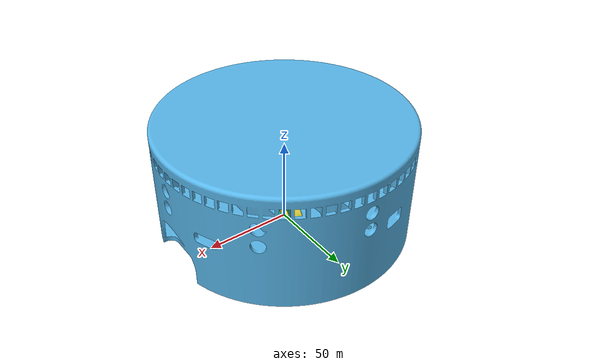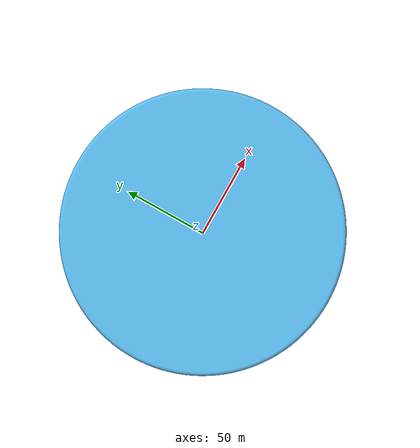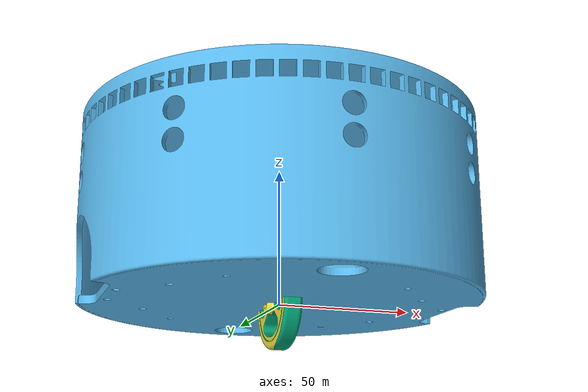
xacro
<?xml version="1.0"?>

<robot name="layka" xmlns:xacro="http://ros.org/wiki/xacro">

  <!-- Include Gazebo Parameters -->
  <xacro:include filename="$(find layka_description)/urdf/layka_odev_gazebo.xacro" />

  <!-- Include ros2_control Plugins -->
  <xacro:include filename="$(find layka_description)/urdf/layka_odev_control.xacro" />

  <link name="base_footprint"/>

  <link name="base_link">
    <visual>
      <origin xyz="0 0 -0.03285" rpy="0 0 0"/>
      <geometry>
          <mesh filename="$(find layka_description)/meshes/base_link.dae" />
      </geometry>
    </visual>

    <collision>
      <geometry>
          <cylinder length="0.0657" radius="0.0725"/>
      </geometry>
      <contact_coefficients mu="0" kp="1000.0" kd="1.0"/>
    </collision>

    <inertial>
      <origin xyz="0 0 0.016"/>
      <mass value="1.5" />
      <inertia ixx="0.01" ixy="0.0" ixz="0"
            iyy="0.01" iyz="0" izz="0.01" />
    </inertial>
  </link>

  <joint name="base_joint" type="fixed">
    <origin xyz="0 0 0.04245" rpy="0 0 0"/>
    <parent link="base_footprint"/>
    <child link="base_link"/>
  </joint>

   <link name="wheel_right_link">
    <visual>
      <origin xyz="0.016 0 0" rpy="0 -1.5708 0"/>
      <geometry>
          <mesh filename="$(find layka_description)/meshes/wheel_link.dae" />
      </geometry>
    </visual>

    <collision>
      <geometry>
          <cylinder radius="0.016" length="0.007"/>
      </geometry>
      <contact_coefficients mu="0" kp="1000.0" kd="1.0"/>
    </collision>

    <inertial>
      <mass value="1.0" />
      <inertia ixx="0.01" ixy="0.0" ixz="0"
            iyy="0.01" iyz="0" izz="0.01" />
    </inertial>
  </link>

  <joint name="wheel_right_joint" type="continuous">
    <origin xyz="0.0 -0.06925 -0.02645" rpy="1.57 0.0 0.0"/>
    <parent link="base_link"/>
    <child link="wheel_right_link"/>
    <axis xyz="0.0 0.0 1.0"/>
  </joint>

  <link name="wheel_left_link">
    <visual>
      <origin xyz="-0.016 0 0" rpy="0 1.5708 0"/>
      <geometry>
          <mesh filename="$(find layka_description)/meshes/wheel_link.dae" />
      </geometry>
    </visual>

    <collision>
      <geometry>
          <cylinder radius="0.016" length="0.007"/>
      </geometry>
      <contact_coefficients mu="0" kp="1000.0" kd="1.0"/>
    </collision>

    <inertial>
      <mass value="1.0" />
      <inertia ixx="0.01" ixy="0.0" ixz="0"
            iyy="0.01" iyz="0" izz="0.01" />
    </inertial>
  </link>

  <joint name="wheel_left_joint" type="continuous">
    <origin xyz="0.0 0.06925 -0.02645" rpy="1.57 0.0 0.0"/>
    <parent link="base_link"/>
    <child link="wheel_left_link"/>
    <axis xyz="0.0 0.0 1.0"/>
  </joint>

  <link name="caster_front_link">
    <visual>
      <geometry>
        <sphere radius="0.00635" />
      </geometry>
      <material name="layka_white" />
    </visual>

    <collision>
      <origin/>
      <geometry>
        <sphere radius="0.00635" />
      </geometry>
      <contact_coefficients mu="0" kp="1000.0" kd="1.0"/>
    </collision>

    <inertial>
      <mass value="1.0" />
      <inertia ixx="0.01" ixy="0.0" ixz="0"
            iyy="0.01" iyz="0" izz="0.01" />
    </inertial>
  </link>

  <joint name="caster_front_joint" type="continuous">
    <origin xyz="0.06 0.0 -0.0361" rpy="0.0 0.0 0.0"/>
    <axis xyz="0 0 1" />
    <parent link="base_link"/>
    <child link="caster_front_link"/>
  </joint>

  <link name="caster_back_link">
    <visual>
      <geometry>
        <sphere radius="0.00635" />
      </geometry>
      <material name="layka_white" />
    </visual>

    <collision>
      <origin/>
      <geometry>
        <sphere radius="0.00635" />
      </geometry>
      <contact_coefficients mu="0" kp="1000.0" kd="1.0"/>
    </collision>

    <inertial>
      <mass value="1.0" />
      <inertia ixx="0.01" ixy="0.0" ixz="0"
            iyy="0.01" iyz="0" izz="0.01" />
    </inertial>
  </link>

  <joint name="caster_back_joint" type="continuous">
    <origin xyz="-0.06 0.0 -0.0361" rpy="0.0 0.0 0.0"/>
    <axis xyz="0 0 1" />
    <parent link="base_link"/>
    <child link="caster_back_link"/>
  </joint>

    <xacro:property name="lidar_radius"             value="0.025"/>
    <xacro:property name="lidar_thickness"          value="0.040"/>
    <xacro:property name="lidar_offset_x"           value="0.0"/>
    <xacro:property name="lidar_offset_z"           value="0.05385"/>

    <!-- Lidar -->
    <joint name="lidar_joint" type="fixed">
        <parent link="base_link"/>
        <child link="lidar_frame"/>
        <origin xyz="${lidar_offset_x} 0.0 ${lidar_offset_z}" rpy="0 0 ${pi}"/>
    </joint>

    <link name="lidar_frame">
        <visual>
            <geometry>
                <cylinder radius="${lidar_radius}" length="${lidar_thickness}"/>
            </geometry>
            <material name="layka_black"/>
        </visual>
        <collision>
            <geometry>
                <cylinder radius="${lidar_radius}" length="${lidar_thickness}"/>
            </geometry>
        </collision>
    <inertial>
      <mass value="0.5" />
        <inertia ixx="0.01" ixy="0.0" ixz="0"
          iyy="0.01" iyz="0" izz="0.01" />
    </inertial>
    </link>

<material name="layka_white">
  <color rgba="1 1 1 1"/>
</material>

<material name="layka_black">
  <color rgba="0 0 0 1"/>
</material>

<!-- Gazebo colors to links as upper defined colors are only visible in RVIZ-->

<gazebo reference="caster_front_link">
  <material>Gazebo/White</material>
</gazebo>

<gazebo reference="caster_back_link">
  <material>Gazebo/White</material>
</gazebo>

<gazebo reference="lidar_frame">
  <material>Gazebo/Black</material>
</gazebo>

</robot>
